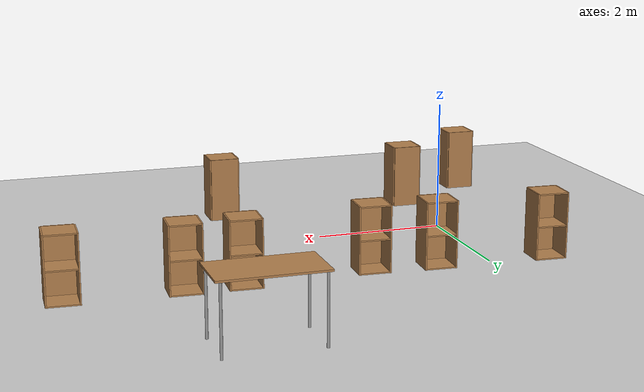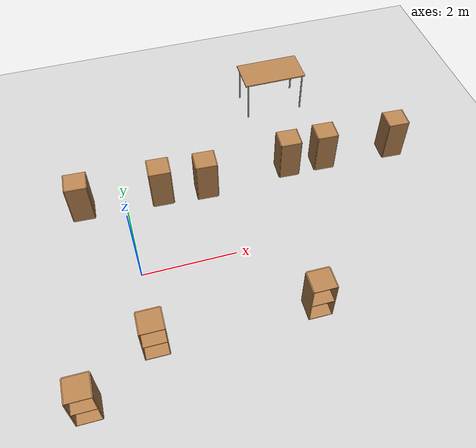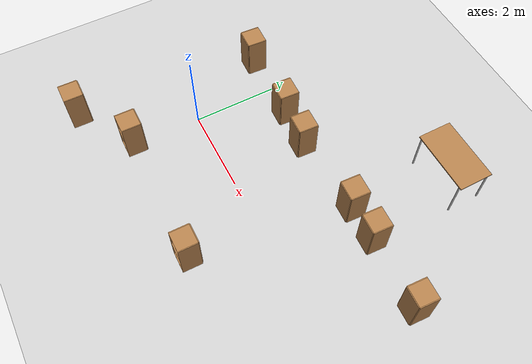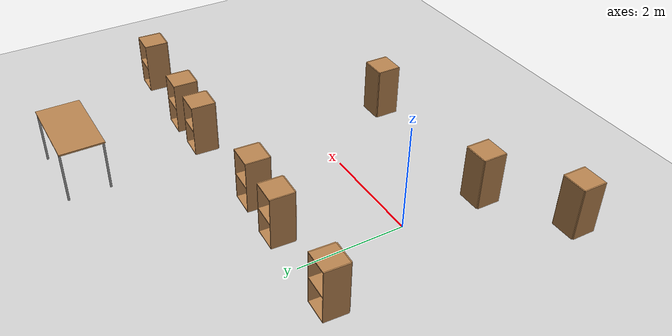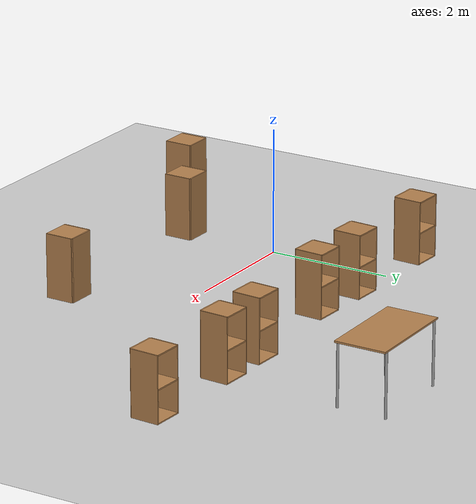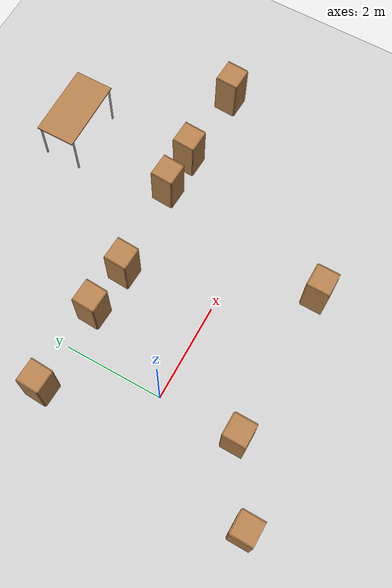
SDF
<sdf version="1.6">
 <world name="default">
  <model name="ground_plane">
   <static>1</static>
   <link name="link">
    <collision name="collision">
     <geometry><plane><normal>0 0 1</normal><size>100 100</size></plane></geometry>
     <surface><friction><ode><mu>100</mu><mu2>50</mu2></ode></friction></surface>
    </collision>
    <visual name="visual">
     <cast_shadows>0</cast_shadows>
     <geometry><plane><normal>0 0 1</normal><size>100 100</size></plane></geometry>
     <material>
      <script><uri>file://media/materials/scripts/gazebo.material</uri><name>Gazebo/Grey</name></script>
     </material>
    </visual>
   </link>
  </model>
  <model name="table_0">
   <static>1</static>
   <link name="link">
    <collision name="surface">
     <pose>0 0 1 0 -0 0</pose>
     <geometry><box><size>1.5 0.8 0.03</size></box></geometry>
     <surface><friction><ode><mu>0.6</mu><mu2>0.6</mu2></ode></friction></surface>
    </collision>
    <visual name="visual1">
     <pose>0 0 1 0 -0 0</pose>
     <geometry><box><size>1.5 0.8 0.03</size></box></geometry>
     <material>
      <script><uri>file://media/materials/scripts/gazebo.material</uri><name>Gazebo/Wood</name></script>
     </material>
    </visual>
    <collision name="front_left_leg">
     <pose>0.68 0.38 0.5 0 -0 0</pose>
     <geometry><cylinder><radius>0.02</radius><length>1</length></cylinder></geometry>
    </collision>
    <visual name="front_left_leg">
     <pose>0.68 0.38 0.5 0 -0 0</pose>
     <geometry><cylinder><radius>0.02</radius><length>1</length></cylinder></geometry>
     <material>
      <script><uri>file://media/materials/scripts/gazebo.material</uri><name>Gazebo/Grey</name></script>
     </material>
    </visual>
    <collision name="front_right_leg">
     <pose>0.68 -0.38 0.5 0 -0 0</pose>
     <geometry><cylinder><radius>0.02</radius><length>1</length></cylinder></geometry>
    </collision>
    <visual name="front_right_leg">
     <pose>0.68 -0.38 0.5 0 -0 0</pose>
     <geometry><cylinder><radius>0.02</radius><length>1</length></cylinder></geometry>
     <material>
      <script><uri>file://media/materials/scripts/gazebo.material</uri><name>Gazebo/Grey</name></script>
     </material>
    </visual>
    <collision name="back_right_leg">
     <pose>-0.68 -0.38 0.5 0 -0 0</pose>
     <geometry><cylinder><radius>0.02</radius><length>1</length></cylinder></geometry>
    </collision>
    <visual name="back_right_leg">
     <pose>-0.68 -0.38 0.5 0 -0 0</pose>
     <geometry><cylinder><radius>0.02</radius><length>1</length></cylinder></geometry>
     <material>
      <script><uri>file://media/materials/scripts/gazebo.material</uri><name>Gazebo/Grey</name></script>
     </material>
    </visual>
    <collision name="back_left_leg">
     <pose>-0.68 0.38 0.5 0 -0 0</pose>
     <geometry><cylinder><radius>0.02</radius><length>1</length></cylinder></geometry>
    </collision>
    <visual name="back_left_leg">
     <pose>-0.68 0.38 0.5 0 -0 0</pose>
     <geometry><cylinder><radius>0.02</radius><length>1</length></cylinder></geometry>
     <material>
      <script><uri>file://media/materials/scripts/gazebo.material</uri><name>Gazebo/Grey</name></script>
     </material>
    </visual>
   </link>
   <pose>4.09062 4.26562 0 0 -0 0</pose>
  </model>
  <model name="cabinet_clone_clone_1">
   <static>1</static>
   <link name="cabinet_bottom_plate">
    <inertial>
     <pose>0 0 -1 0 -0 0</pose>
     <inertia><ixx>2.05</ixx><ixy>0</ixy><ixz>0</ixz><iyy>2.05</iyy><iyz>0</iyz><izz>2.05</izz></inertia>
     <mass>25</mass>
    </inertial>
    <collision name="cabinet_bottom_plate_geom">
     <pose>0 0 0.01 0 -0 0</pose>
     <geometry><box><size>0.45 0.45 0.02</size></box></geometry>
    </collision>
    <visual name="cabinet_bottom_plate_geom_visual">
     <pose>0 0 0.01 0 -0 0</pose>
     <geometry><box><size>0.45 0.45 0.02</size></box></geometry>
     <material>
      <script><uri>file://media/materials/scripts/gazebo.material</uri><name>Gazebo/Wood</name></script>
     </material>
    </visual>
    <collision name="cabinet_bottom_plate_geom_cabinet_back_plate">
     <pose>0.235 0 0.51 0 -0 0</pose>
     <geometry><box><size>0.02 0.45 1.02</size></box></geometry>
    </collision>
    <visual name="cabinet_bottom_plate_geom_cabinet_back_plate_visual">
     <pose>0.235 0 0.51 0 -0 0</pose>
     <geometry><box><size>0.02 0.45 1.02</size></box></geometry>
     <material>
      <script><uri>file://media/materials/scripts/gazebo.material</uri><name>Gazebo/Wood</name></script>
     </material>
    </visual>
    <collision name="cabinet_bottom_plate_geom_cabinet_left_plate">
     <pose>0 0.235 0.51 0 -0 0</pose>
     <geometry><box><size>0.45 0.02 1.02</size></box></geometry>
    </collision>
    <visual name="cabinet_bottom_plate_geom_cabinet_left_plate_visual">
     <pose>0 0.235 0.51 0 -0 0</pose>
     <geometry><box><size>0.45 0.02 1.02</size></box></geometry>
     <material>
      <script><uri>file://media/materials/scripts/gazebo.material</uri><name>Gazebo/Wood</name></script>
     </material>
    </visual>
    <collision name="cabinet_bottom_plate_geom_cabinet_middle_plate">
     <pose>0 0 0.51 0 -0 0</pose>
     <geometry><box><size>0.45 0.45 0.02</size></box></geometry>
    </collision>
    <visual name="cabinet_bottom_plate_geom_cabinet_middle_plate_visual">
     <pose>0 0 0.51 0 -0 0</pose>
     <geometry><box><size>0.45 0.45 0.02</size></box></geometry>
     <material>
      <script><uri>file://media/materials/scripts/gazebo.material</uri><name>Gazebo/Wood</name></script>
     </material>
    </visual>
    <collision name="cabinet_bottom_plate_geom_cabinet_right_plate">
     <pose>0 -0.235 0.51 0 -0 0</pose>
     <geometry><box><size>0.45 0.02 1.02</size></box></geometry>
    </collision>
    <visual name="cabinet_bottom_plate_geom_cabinet_right_plate_visual">
     <pose>0 -0.235 0.51 0 -0 0</pose>
     <geometry><box><size>0.45 0.02 1.02</size></box></geometry>
     <material>
      <script><uri>file://media/materials/scripts/gazebo.material</uri><name>Gazebo/Wood</name></script>
     </material>
    </visual>
    <collision name="cabinet_bottom_plate_geom_cabinet_top_plate">
     <pose>0 0 1.01 0 -0 0</pose>
     <geometry><box><size>0.45 0.45 0.02</size></box></geometry>
    </collision>
    <visual name="cabinet_bottom_plate_geom_cabinet_top_plate_visual">
     <pose>0 0 1.01 0 -0 0</pose>
     <geometry><box><size>0.45 0.45 0.02</size></box></geometry>
     <material>
      <script><uri>file://media/materials/scripts/gazebo.material</uri><name>Gazebo/Wood</name></script>
     </material>
    </visual>
   </link>
   <pose>-1.38672 -2.48011 0 0 -0 1.55893</pose>
  </model>
  <model name="cabinet_clone_clone_2_clone">
   <static>1</static>
   <link name="cabinet_bottom_plate">
    <inertial>
     <pose>0 0 -1 0 -0 0</pose>
     <inertia><ixx>2.05</ixx><ixy>0</ixy><ixz>0</ixz><iyy>2.05</iyy><iyz>0</iyz><izz>2.05</izz></inertia>
     <mass>25</mass>
    </inertial>
    <collision name="cabinet_bottom_plate_geom">
     <pose>0 0 0.01 0 -0 0</pose>
     <geometry><box><size>0.45 0.45 0.02</size></box></geometry>
    </collision>
    <visual name="cabinet_bottom_plate_geom_visual">
     <pose>0 0 0.01 0 -0 0</pose>
     <geometry><box><size>0.45 0.45 0.02</size></box></geometry>
     <material>
      <script><uri>file://media/materials/scripts/gazebo.material</uri><name>Gazebo/Wood</name></script>
     </material>
    </visual>
    <collision name="cabinet_bottom_plate_geom_cabinet_back_plate">
     <pose>0.235 0 0.51 0 -0 0</pose>
     <geometry><box><size>0.02 0.45 1.02</size></box></geometry>
    </collision>
    <visual name="cabinet_bottom_plate_geom_cabinet_back_plate_visual">
     <pose>0.235 0 0.51 0 -0 0</pose>
     <geometry><box><size>0.02 0.45 1.02</size></box></geometry>
     <material>
      <script><uri>file://media/materials/scripts/gazebo.material</uri><name>Gazebo/Wood</name></script>
     </material>
    </visual>
    <collision name="cabinet_bottom_plate_geom_cabinet_left_plate">
     <pose>0 0.235 0.51 0 -0 0</pose>
     <geometry><box><size>0.45 0.02 1.02</size></box></geometry>
    </collision>
    <visual name="cabinet_bottom_plate_geom_cabinet_left_plate_visual">
     <pose>0 0.235 0.51 0 -0 0</pose>
     <geometry><box><size>0.45 0.02 1.02</size></box></geometry>
     <material>
      <script><uri>file://media/materials/scripts/gazebo.material</uri><name>Gazebo/Wood</name></script>
     </material>
    </visual>
    <collision name="cabinet_bottom_plate_geom_cabinet_middle_plate">
     <pose>0 0 0.51 0 -0 0</pose>
     <geometry><box><size>0.45 0.45 0.02</size></box></geometry>
    </collision>
    <visual name="cabinet_bottom_plate_geom_cabinet_middle_plate_visual">
     <pose>0 0 0.51 0 -0 0</pose>
     <geometry><box><size>0.45 0.45 0.02</size></box></geometry>
     <material>
      <script><uri>file://media/materials/scripts/gazebo.material</uri><name>Gazebo/Wood</name></script>
     </material>
    </visual>
    <collision name="cabinet_bottom_plate_geom_cabinet_right_plate">
     <pose>0 -0.235 0.51 0 -0 0</pose>
     <geometry><box><size>0.45 0.02 1.02</size></box></geometry>
    </collision>
    <visual name="cabinet_bottom_plate_geom_cabinet_right_plate_visual">
     <pose>0 -0.235 0.51 0 -0 0</pose>
     <geometry><box><size>0.45 0.02 1.02</size></box></geometry>
     <material>
      <script><uri>file://media/materials/scripts/gazebo.material</uri><name>Gazebo/Wood</name></script>
     </material>
    </visual>
    <collision name="cabinet_bottom_plate_geom_cabinet_top_plate">
     <pose>0 0 1.01 0 -0 0</pose>
     <geometry><box><size>0.45 0.45 0.02</size></box></geometry>
    </collision>
    <visual name="cabinet_bottom_plate_geom_cabinet_top_plate_visual">
     <pose>0 0 1.01 0 -0 0</pose>
     <geometry><box><size>0.45 0.45 0.02</size></box></geometry>
     <material>
      <script><uri>file://media/materials/scripts/gazebo.material</uri><name>Gazebo/Wood</name></script>
     </material>
    </visual>
   </link>
   <pose>-0.929233 1.98604 0 0 0 -1.62204</pose>
  </model>
  <model name="cabinet_clone_clone_2_clone_0">
   <static>1</static>
   <link name="cabinet_bottom_plate">
    <inertial>
     <pose>0 0 -1 0 -0 0</pose>
     <inertia><ixx>2.05</ixx><ixy>0</ixy><ixz>0</ixz><iyy>2.05</iyy><iyz>0</iyz><izz>2.05</izz></inertia>
     <mass>25</mass>
    </inertial>
    <collision name="cabinet_bottom_plate_geom">
     <pose>0 0 0.01 0 -0 0</pose>
     <geometry><box><size>0.45 0.45 0.02</size></box></geometry>
    </collision>
    <visual name="cabinet_bottom_plate_geom_visual">
     <pose>0 0 0.01 0 -0 0</pose>
     <geometry><box><size>0.45 0.45 0.02</size></box></geometry>
     <material>
      <script><uri>file://media/materials/scripts/gazebo.material</uri><name>Gazebo/Wood</name></script>
     </material>
    </visual>
    <collision name="cabinet_bottom_plate_geom_cabinet_back_plate">
     <pose>0.235 0 0.51 0 -0 0</pose>
     <geometry><box><size>0.02 0.45 1.02</size></box></geometry>
    </collision>
    <visual name="cabinet_bottom_plate_geom_cabinet_back_plate_visual">
     <pose>0.235 0 0.51 0 -0 0</pose>
     <geometry><box><size>0.02 0.45 1.02</size></box></geometry>
     <material>
      <script><uri>file://media/materials/scripts/gazebo.material</uri><name>Gazebo/Wood</name></script>
     </material>
    </visual>
    <collision name="cabinet_bottom_plate_geom_cabinet_left_plate">
     <pose>0 0.235 0.51 0 -0 0</pose>
     <geometry><box><size>0.45 0.02 1.02</size></box></geometry>
    </collision>
    <visual name="cabinet_bottom_plate_geom_cabinet_left_plate_visual">
     <pose>0 0.235 0.51 0 -0 0</pose>
     <geometry><box><size>0.45 0.02 1.02</size></box></geometry>
     <material>
      <script><uri>file://media/materials/scripts/gazebo.material</uri><name>Gazebo/Wood</name></script>
     </material>
    </visual>
    <collision name="cabinet_bottom_plate_geom_cabinet_middle_plate">
     <pose>0 0 0.51 0 -0 0</pose>
     <geometry><box><size>0.45 0.45 0.02</size></box></geometry>
    </collision>
    <visual name="cabinet_bottom_plate_geom_cabinet_middle_plate_visual">
     <pose>0 0 0.51 0 -0 0</pose>
     <geometry><box><size>0.45 0.45 0.02</size></box></geometry>
     <material>
      <script><uri>file://media/materials/scripts/gazebo.material</uri><name>Gazebo/Wood</name></script>
     </material>
    </visual>
    <collision name="cabinet_bottom_plate_geom_cabinet_right_plate">
     <pose>0 -0.235 0.51 0 -0 0</pose>
     <geometry><box><size>0.45 0.02 1.02</size></box></geometry>
    </collision>
    <visual name="cabinet_bottom_plate_geom_cabinet_right_plate_visual">
     <pose>0 -0.235 0.51 0 -0 0</pose>
     <geometry><box><size>0.45 0.02 1.02</size></box></geometry>
     <material>
      <script><uri>file://media/materials/scripts/gazebo.material</uri><name>Gazebo/Wood</name></script>
     </material>
    </visual>
    <collision name="cabinet_bottom_plate_geom_cabinet_top_plate">
     <pose>0 0 1.01 0 -0 0</pose>
     <geometry><box><size>0.45 0.45 0.02</size></box></geometry>
    </collision>
    <visual name="cabinet_bottom_plate_geom_cabinet_top_plate_visual">
     <pose>0 0 1.01 0 -0 0</pose>
     <geometry><box><size>0.45 0.45 0.02</size></box></geometry>
     <material>
      <script><uri>file://media/materials/scripts/gazebo.material</uri><name>Gazebo/Wood</name></script>
     </material>
    </visual>
   </link>
   <pose>0.822894 1.92328 0 0 0 -1.62204</pose>
  </model>
  <model name="cabinet_clone_clone_2_clone_1">
   <static>1</static>
   <link name="cabinet_bottom_plate">
    <inertial>
     <pose>0 0 -1 0 -0 0</pose>
     <inertia><ixx>2.05</ixx><ixy>0</ixy><ixz>0</ixz><iyy>2.05</iyy><iyz>0</iyz><izz>2.05</izz></inertia>
     <mass>25</mass>
    </inertial>
    <collision name="cabinet_bottom_plate_geom">
     <pose>0 0 0.01 0 -0 0</pose>
     <geometry><box><size>0.45 0.45 0.02</size></box></geometry>
    </collision>
    <visual name="cabinet_bottom_plate_geom_visual">
     <pose>0 0 0.01 0 -0 0</pose>
     <geometry><box><size>0.45 0.45 0.02</size></box></geometry>
     <material>
      <script><uri>file://media/materials/scripts/gazebo.material</uri><name>Gazebo/Wood</name></script>
     </material>
    </visual>
    <collision name="cabinet_bottom_plate_geom_cabinet_back_plate">
     <pose>0.235 0 0.51 0 -0 0</pose>
     <geometry><box><size>0.02 0.45 1.02</size></box></geometry>
    </collision>
    <visual name="cabinet_bottom_plate_geom_cabinet_back_plate_visual">
     <pose>0.235 0 0.51 0 -0 0</pose>
     <geometry><box><size>0.02 0.45 1.02</size></box></geometry>
     <material>
      <script><uri>file://media/materials/scripts/gazebo.material</uri><name>Gazebo/Wood</name></script>
     </material>
    </visual>
    <collision name="cabinet_bottom_plate_geom_cabinet_left_plate">
     <pose>0 0.235 0.51 0 -0 0</pose>
     <geometry><box><size>0.45 0.02 1.02</size></box></geometry>
    </collision>
    <visual name="cabinet_bottom_plate_geom_cabinet_left_plate_visual">
     <pose>0 0.235 0.51 0 -0 0</pose>
     <geometry><box><size>0.45 0.02 1.02</size></box></geometry>
     <material>
      <script><uri>file://media/materials/scripts/gazebo.material</uri><name>Gazebo/Wood</name></script>
     </material>
    </visual>
    <collision name="cabinet_bottom_plate_geom_cabinet_middle_plate">
     <pose>0 0 0.51 0 -0 0</pose>
     <geometry><box><size>0.45 0.45 0.02</size></box></geometry>
    </collision>
    <visual name="cabinet_bottom_plate_geom_cabinet_middle_plate_visual">
     <pose>0 0 0.51 0 -0 0</pose>
     <geometry><box><size>0.45 0.45 0.02</size></box></geometry>
     <material>
      <script><uri>file://media/materials/scripts/gazebo.material</uri><name>Gazebo/Wood</name></script>
     </material>
    </visual>
    <collision name="cabinet_bottom_plate_geom_cabinet_right_plate">
     <pose>0 -0.235 0.51 0 -0 0</pose>
     <geometry><box><size>0.45 0.02 1.02</size></box></geometry>
    </collision>
    <visual name="cabinet_bottom_plate_geom_cabinet_right_plate_visual">
     <pose>0 -0.235 0.51 0 -0 0</pose>
     <geometry><box><size>0.45 0.02 1.02</size></box></geometry>
     <material>
      <script><uri>file://media/materials/scripts/gazebo.material</uri><name>Gazebo/Wood</name></script>
     </material>
    </visual>
    <collision name="cabinet_bottom_plate_geom_cabinet_top_plate">
     <pose>0 0 1.01 0 -0 0</pose>
     <geometry><box><size>0.45 0.45 0.02</size></box></geometry>
    </collision>
    <visual name="cabinet_bottom_plate_geom_cabinet_top_plate_visual">
     <pose>0 0 1.01 0 -0 0</pose>
     <geometry><box><size>0.45 0.45 0.02</size></box></geometry>
     <material>
      <script><uri>file://media/materials/scripts/gazebo.material</uri><name>Gazebo/Wood</name></script>
     </material>
    </visual>
   </link>
   <pose>1.82435 1.84804 0 0 0 -1.62204</pose>
  </model>
  <model name="cabinet_clone_clone_2_clone_2">
   <static>1</static>
   <link name="cabinet_bottom_plate">
    <inertial>
     <pose>0 0 -1 0 -0 0</pose>
     <inertia><ixx>2.05</ixx><ixy>0</ixy><ixz>0</ixz><iyy>2.05</iyy><iyz>0</iyz><izz>2.05</izz></inertia>
     <mass>25</mass>
    </inertial>
    <collision name="cabinet_bottom_plate_geom">
     <pose>0 0 0.01 0 -0 0</pose>
     <geometry><box><size>0.45 0.45 0.02</size></box></geometry>
    </collision>
    <visual name="cabinet_bottom_plate_geom_visual">
     <pose>0 0 0.01 0 -0 0</pose>
     <geometry><box><size>0.45 0.45 0.02</size></box></geometry>
     <material>
      <script><uri>file://media/materials/scripts/gazebo.material</uri><name>Gazebo/Wood</name></script>
     </material>
    </visual>
    <collision name="cabinet_bottom_plate_geom_cabinet_back_plate">
     <pose>0.235 0 0.51 0 -0 0</pose>
     <geometry><box><size>0.02 0.45 1.02</size></box></geometry>
    </collision>
    <visual name="cabinet_bottom_plate_geom_cabinet_back_plate_visual">
     <pose>0.235 0 0.51 0 -0 0</pose>
     <geometry><box><size>0.02 0.45 1.02</size></box></geometry>
     <material>
      <script><uri>file://media/materials/scripts/gazebo.material</uri><name>Gazebo/Wood</name></script>
     </material>
    </visual>
    <collision name="cabinet_bottom_plate_geom_cabinet_left_plate">
     <pose>0 0.235 0.51 0 -0 0</pose>
     <geometry><box><size>0.45 0.02 1.02</size></box></geometry>
    </collision>
    <visual name="cabinet_bottom_plate_geom_cabinet_left_plate_visual">
     <pose>0 0.235 0.51 0 -0 0</pose>
     <geometry><box><size>0.45 0.02 1.02</size></box></geometry>
     <material>
      <script><uri>file://media/materials/scripts/gazebo.material</uri><name>Gazebo/Wood</name></script>
     </material>
    </visual>
    <collision name="cabinet_bottom_plate_geom_cabinet_middle_plate">
     <pose>0 0 0.51 0 -0 0</pose>
     <geometry><box><size>0.45 0.45 0.02</size></box></geometry>
    </collision>
    <visual name="cabinet_bottom_plate_geom_cabinet_middle_plate_visual">
     <pose>0 0 0.51 0 -0 0</pose>
     <geometry><box><size>0.45 0.45 0.02</size></box></geometry>
     <material>
      <script><uri>file://media/materials/scripts/gazebo.material</uri><name>Gazebo/Wood</name></script>
     </material>
    </visual>
    <collision name="cabinet_bottom_plate_geom_cabinet_right_plate">
     <pose>0 -0.235 0.51 0 -0 0</pose>
     <geometry><box><size>0.45 0.02 1.02</size></box></geometry>
    </collision>
    <visual name="cabinet_bottom_plate_geom_cabinet_right_plate_visual">
     <pose>0 -0.235 0.51 0 -0 0</pose>
     <geometry><box><size>0.45 0.02 1.02</size></box></geometry>
     <material>
      <script><uri>file://media/materials/scripts/gazebo.material</uri><name>Gazebo/Wood</name></script>
     </material>
    </visual>
    <collision name="cabinet_bottom_plate_geom_cabinet_top_plate">
     <pose>0 0 1.01 0 -0 0</pose>
     <geometry><box><size>0.45 0.45 0.02</size></box></geometry>
    </collision>
    <visual name="cabinet_bottom_plate_geom_cabinet_top_plate_visual">
     <pose>0 0 1.01 0 -0 0</pose>
     <geometry><box><size>0.45 0.45 0.02</size></box></geometry>
     <material>
      <script><uri>file://media/materials/scripts/gazebo.material</uri><name>Gazebo/Wood</name></script>
     </material>
    </visual>
   </link>
   <pose>3.77479 1.96724 0 0 0 -1.62204</pose>
  </model>
  <model name="cabinet_clone_clone_2_clone_3">
   <static>1</static>
   <link name="cabinet_bottom_plate">
    <inertial>
     <pose>0 0 -1 0 -0 0</pose>
     <inertia><ixx>2.05</ixx><ixy>0</ixy><ixz>0</ixz><iyy>2.05</iyy><iyz>0</iyz><izz>2.05</izz></inertia>
     <mass>25</mass>
    </inertial>
    <collision name="cabinet_bottom_plate_geom">
     <pose>0 0 0.01 0 -0 0</pose>
     <geometry><box><size>0.45 0.45 0.02</size></box></geometry>
    </collision>
    <visual name="cabinet_bottom_plate_geom_visual">
     <pose>0 0 0.01 0 -0 0</pose>
     <geometry><box><size>0.45 0.45 0.02</size></box></geometry>
     <material>
      <script><uri>file://media/materials/scripts/gazebo.material</uri><name>Gazebo/Wood</name></script>
     </material>
    </visual>
    <collision name="cabinet_bottom_plate_geom_cabinet_back_plate">
     <pose>0.235 0 0.51 0 -0 0</pose>
     <geometry><box><size>0.02 0.45 1.02</size></box></geometry>
    </collision>
    <visual name="cabinet_bottom_plate_geom_cabinet_back_plate_visual">
     <pose>0.235 0 0.51 0 -0 0</pose>
     <geometry><box><size>0.02 0.45 1.02</size></box></geometry>
     <material>
      <script><uri>file://media/materials/scripts/gazebo.material</uri><name>Gazebo/Wood</name></script>
     </material>
    </visual>
    <collision name="cabinet_bottom_plate_geom_cabinet_left_plate">
     <pose>0 0.235 0.51 0 -0 0</pose>
     <geometry><box><size>0.45 0.02 1.02</size></box></geometry>
    </collision>
    <visual name="cabinet_bottom_plate_geom_cabinet_left_plate_visual">
     <pose>0 0.235 0.51 0 -0 0</pose>
     <geometry><box><size>0.45 0.02 1.02</size></box></geometry>
     <material>
      <script><uri>file://media/materials/scripts/gazebo.material</uri><name>Gazebo/Wood</name></script>
     </material>
    </visual>
    <collision name="cabinet_bottom_plate_geom_cabinet_middle_plate">
     <pose>0 0 0.51 0 -0 0</pose>
     <geometry><box><size>0.45 0.45 0.02</size></box></geometry>
    </collision>
    <visual name="cabinet_bottom_plate_geom_cabinet_middle_plate_visual">
     <pose>0 0 0.51 0 -0 0</pose>
     <geometry><box><size>0.45 0.45 0.02</size></box></geometry>
     <material>
      <script><uri>file://media/materials/scripts/gazebo.material</uri><name>Gazebo/Wood</name></script>
     </material>
    </visual>
    <collision name="cabinet_bottom_plate_geom_cabinet_right_plate">
     <pose>0 -0.235 0.51 0 -0 0</pose>
     <geometry><box><size>0.45 0.02 1.02</size></box></geometry>
    </collision>
    <visual name="cabinet_bottom_plate_geom_cabinet_right_plate_visual">
     <pose>0 -0.235 0.51 0 -0 0</pose>
     <geometry><box><size>0.45 0.02 1.02</size></box></geometry>
     <material>
      <script><uri>file://media/materials/scripts/gazebo.material</uri><name>Gazebo/Wood</name></script>
     </material>
    </visual>
    <collision name="cabinet_bottom_plate_geom_cabinet_top_plate">
     <pose>0 0 1.01 0 -0 0</pose>
     <geometry><box><size>0.45 0.45 0.02</size></box></geometry>
    </collision>
    <visual name="cabinet_bottom_plate_geom_cabinet_top_plate_visual">
     <pose>0 0 1.01 0 -0 0</pose>
     <geometry><box><size>0.45 0.45 0.02</size></box></geometry>
     <material>
      <script><uri>file://media/materials/scripts/gazebo.material</uri><name>Gazebo/Wood</name></script>
     </material>
    </visual>
   </link>
   <pose>4.62837 1.95934 0 0 0 -1.62204</pose>
  </model>
  <model name="cabinet_clone_clone_2_clone_4">
   <static>1</static>
   <link name="cabinet_bottom_plate">
    <inertial>
     <pose>0 0 -1 0 -0 0</pose>
     <inertia><ixx>2.05</ixx><ixy>0</ixy><ixz>0</ixz><iyy>2.05</iyy><iyz>0</iyz><izz>2.05</izz></inertia>
     <mass>25</mass>
    </inertial>
    <collision name="cabinet_bottom_plate_geom">
     <pose>0 0 0.01 0 -0 0</pose>
     <geometry><box><size>0.45 0.45 0.02</size></box></geometry>
    </collision>
    <visual name="cabinet_bottom_plate_geom_visual">
     <pose>0 0 0.01 0 -0 0</pose>
     <geometry><box><size>0.45 0.45 0.02</size></box></geometry>
     <material>
      <script><uri>file://media/materials/scripts/gazebo.material</uri><name>Gazebo/Wood</name></script>
     </material>
    </visual>
    <collision name="cabinet_bottom_plate_geom_cabinet_back_plate">
     <pose>0.235 0 0.51 0 -0 0</pose>
     <geometry><box><size>0.02 0.45 1.02</size></box></geometry>
    </collision>
    <visual name="cabinet_bottom_plate_geom_cabinet_back_plate_visual">
     <pose>0.235 0 0.51 0 -0 0</pose>
     <geometry><box><size>0.02 0.45 1.02</size></box></geometry>
     <material>
      <script><uri>file://media/materials/scripts/gazebo.material</uri><name>Gazebo/Wood</name></script>
     </material>
    </visual>
    <collision name="cabinet_bottom_plate_geom_cabinet_left_plate">
     <pose>0 0.235 0.51 0 -0 0</pose>
     <geometry><box><size>0.45 0.02 1.02</size></box></geometry>
    </collision>
    <visual name="cabinet_bottom_plate_geom_cabinet_left_plate_visual">
     <pose>0 0.235 0.51 0 -0 0</pose>
     <geometry><box><size>0.45 0.02 1.02</size></box></geometry>
     <material>
      <script><uri>file://media/materials/scripts/gazebo.material</uri><name>Gazebo/Wood</name></script>
     </material>
    </visual>
    <collision name="cabinet_bottom_plate_geom_cabinet_middle_plate">
     <pose>0 0 0.51 0 -0 0</pose>
     <geometry><box><size>0.45 0.45 0.02</size></box></geometry>
    </collision>
    <visual name="cabinet_bottom_plate_geom_cabinet_middle_plate_visual">
     <pose>0 0 0.51 0 -0 0</pose>
     <geometry><box><size>0.45 0.45 0.02</size></box></geometry>
     <material>
      <script><uri>file://media/materials/scripts/gazebo.material</uri><name>Gazebo/Wood</name></script>
     </material>
    </visual>
    <collision name="cabinet_bottom_plate_geom_cabinet_right_plate">
     <pose>0 -0.235 0.51 0 -0 0</pose>
     <geometry><box><size>0.45 0.02 1.02</size></box></geometry>
    </collision>
    <visual name="cabinet_bottom_plate_geom_cabinet_right_plate_visual">
     <pose>0 -0.235 0.51 0 -0 0</pose>
     <geometry><box><size>0.45 0.02 1.02</size></box></geometry>
     <material>
      <script><uri>file://media/materials/scripts/gazebo.material</uri><name>Gazebo/Wood</name></script>
     </material>
    </visual>
    <collision name="cabinet_bottom_plate_geom_cabinet_top_plate">
     <pose>0 0 1.01 0 -0 0</pose>
     <geometry><box><size>0.45 0.45 0.02</size></box></geometry>
    </collision>
    <visual name="cabinet_bottom_plate_geom_cabinet_top_plate_visual">
     <pose>0 0 1.01 0 -0 0</pose>
     <geometry><box><size>0.45 0.45 0.02</size></box></geometry>
     <material>
      <script><uri>file://media/materials/scripts/gazebo.material</uri><name>Gazebo/Wood</name></script>
     </material>
    </visual>
   </link>
   <pose>6.3125 1.89373 0 0 0 -1.62204</pose>
  </model>
  <model name="cabinet_clone_clone_1_clone">
   <static>1</static>
   <link name="cabinet_bottom_plate">
    <inertial>
     <pose>0 0 -1 0 -0 0</pose>
     <inertia><ixx>2.05</ixx><ixy>0</ixy><ixz>0</ixz><iyy>2.05</iyy><iyz>0</iyz><izz>2.05</izz></inertia>
     <mass>25</mass>
    </inertial>
    <collision name="cabinet_bottom_plate_geom">
     <pose>0 0 0.01 0 -0 0</pose>
     <geometry><box><size>0.45 0.45 0.02</size></box></geometry>
    </collision>
    <visual name="cabinet_bottom_plate_geom_visual">
     <pose>0 0 0.01 0 -0 0</pose>
     <geometry><box><size>0.45 0.45 0.02</size></box></geometry>
     <material>
      <script><uri>file://media/materials/scripts/gazebo.material</uri><name>Gazebo/Wood</name></script>
     </material>
    </visual>
    <collision name="cabinet_bottom_plate_geom_cabinet_back_plate">
     <pose>0.235 0 0.51 0 -0 0</pose>
     <geometry><box><size>0.02 0.45 1.02</size></box></geometry>
    </collision>
    <visual name="cabinet_bottom_plate_geom_cabinet_back_plate_visual">
     <pose>0.235 0 0.51 0 -0 0</pose>
     <geometry><box><size>0.02 0.45 1.02</size></box></geometry>
     <material>
      <script><uri>file://media/materials/scripts/gazebo.material</uri><name>Gazebo/Wood</name></script>
     </material>
    </visual>
    <collision name="cabinet_bottom_plate_geom_cabinet_left_plate">
     <pose>0 0.235 0.51 0 -0 0</pose>
     <geometry><box><size>0.45 0.02 1.02</size></box></geometry>
    </collision>
    <visual name="cabinet_bottom_plate_geom_cabinet_left_plate_visual">
     <pose>0 0.235 0.51 0 -0 0</pose>
     <geometry><box><size>0.45 0.02 1.02</size></box></geometry>
     <material>
      <script><uri>file://media/materials/scripts/gazebo.material</uri><name>Gazebo/Wood</name></script>
     </material>
    </visual>
    <collision name="cabinet_bottom_plate_geom_cabinet_middle_plate">
     <pose>0 0 0.51 0 -0 0</pose>
     <geometry><box><size>0.45 0.45 0.02</size></box></geometry>
    </collision>
    <visual name="cabinet_bottom_plate_geom_cabinet_middle_plate_visual">
     <pose>0 0 0.51 0 -0 0</pose>
     <geometry><box><size>0.45 0.45 0.02</size></box></geometry>
     <material>
      <script><uri>file://media/materials/scripts/gazebo.material</uri><name>Gazebo/Wood</name></script>
     </material>
    </visual>
    <collision name="cabinet_bottom_plate_geom_cabinet_right_plate">
     <pose>0 -0.235 0.51 0 -0 0</pose>
     <geometry><box><size>0.45 0.02 1.02</size></box></geometry>
    </collision>
    <visual name="cabinet_bottom_plate_geom_cabinet_right_plate_visual">
     <pose>0 -0.235 0.51 0 -0 0</pose>
     <geometry><box><size>0.45 0.02 1.02</size></box></geometry>
     <material>
      <script><uri>file://media/materials/scripts/gazebo.material</uri><name>Gazebo/Wood</name></script>
     </material>
    </visual>
    <collision name="cabinet_bottom_plate_geom_cabinet_top_plate">
     <pose>0 0 1.01 0 -0 0</pose>
     <geometry><box><size>0.45 0.45 0.02</size></box></geometry>
    </collision>
    <visual name="cabinet_bottom_plate_geom_cabinet_top_plate_visual">
     <pose>0 0 1.01 0 -0 0</pose>
     <geometry><box><size>0.45 0.45 0.02</size></box></geometry>
     <material>
      <script><uri>file://media/materials/scripts/gazebo.material</uri><name>Gazebo/Wood</name></script>
     </material>
    </visual>
   </link>
   <pose>-0.016575 -1.61649 0 0 -0 1.55893</pose>
  </model>
  <model name="cabinet_clone_clone_1_clone_0">
   <static>1</static>
   <link name="cabinet_bottom_plate">
    <inertial>
     <pose>0 0 -1 0 -0 0</pose>
     <inertia><ixx>2.05</ixx><ixy>0</ixy><ixz>0</ixz><iyy>2.05</iyy><iyz>0</iyz><izz>2.05</izz></inertia>
     <mass>25</mass>
    </inertial>
    <collision name="cabinet_bottom_plate_geom">
     <pose>0 0 0.01 0 -0 0</pose>
     <geometry><box><size>0.45 0.45 0.02</size></box></geometry>
    </collision>
    <visual name="cabinet_bottom_plate_geom_visual">
     <pose>0 0 0.01 0 -0 0</pose>
     <geometry><box><size>0.45 0.45 0.02</size></box></geometry>
     <material>
      <script><uri>file://media/materials/scripts/gazebo.material</uri><name>Gazebo/Wood</name></script>
     </material>
    </visual>
    <collision name="cabinet_bottom_plate_geom_cabinet_back_plate">
     <pose>0.235 0 0.51 0 -0 0</pose>
     <geometry><box><size>0.02 0.45 1.02</size></box></geometry>
    </collision>
    <visual name="cabinet_bottom_plate_geom_cabinet_back_plate_visual">
     <pose>0.235 0 0.51 0 -0 0</pose>
     <geometry><box><size>0.02 0.45 1.02</size></box></geometry>
     <material>
      <script><uri>file://media/materials/scripts/gazebo.material</uri><name>Gazebo/Wood</name></script>
     </material>
    </visual>
    <collision name="cabinet_bottom_plate_geom_cabinet_left_plate">
     <pose>0 0.235 0.51 0 -0 0</pose>
     <geometry><box><size>0.45 0.02 1.02</size></box></geometry>
    </collision>
    <visual name="cabinet_bottom_plate_geom_cabinet_left_plate_visual">
     <pose>0 0.235 0.51 0 -0 0</pose>
     <geometry><box><size>0.45 0.02 1.02</size></box></geometry>
     <material>
      <script><uri>file://media/materials/scripts/gazebo.material</uri><name>Gazebo/Wood</name></script>
     </material>
    </visual>
    <collision name="cabinet_bottom_plate_geom_cabinet_middle_plate">
     <pose>0 0 0.51 0 -0 0</pose>
     <geometry><box><size>0.45 0.45 0.02</size></box></geometry>
    </collision>
    <visual name="cabinet_bottom_plate_geom_cabinet_middle_plate_visual">
     <pose>0 0 0.51 0 -0 0</pose>
     <geometry><box><size>0.45 0.45 0.02</size></box></geometry>
     <material>
      <script><uri>file://media/materials/scripts/gazebo.material</uri><name>Gazebo/Wood</name></script>
     </material>
    </visual>
    <collision name="cabinet_bottom_plate_geom_cabinet_right_plate">
     <pose>0 -0.235 0.51 0 -0 0</pose>
     <geometry><box><size>0.45 0.02 1.02</size></box></geometry>
    </collision>
    <visual name="cabinet_bottom_plate_geom_cabinet_right_plate_visual">
     <pose>0 -0.235 0.51 0 -0 0</pose>
     <geometry><box><size>0.45 0.02 1.02</size></box></geometry>
     <material>
      <script><uri>file://media/materials/scripts/gazebo.material</uri><name>Gazebo/Wood</name></script>
     </material>
    </visual>
    <collision name="cabinet_bottom_plate_geom_cabinet_top_plate">
     <pose>0 0 1.01 0 -0 0</pose>
     <geometry><box><size>0.45 0.45 0.02</size></box></geometry>
    </collision>
    <visual name="cabinet_bottom_plate_geom_cabinet_top_plate_visual">
     <pose>0 0 1.01 0 -0 0</pose>
     <geometry><box><size>0.45 0.45 0.02</size></box></geometry>
     <material>
      <script><uri>file://media/materials/scripts/gazebo.material</uri><name>Gazebo/Wood</name></script>
     </material>
    </visual>
   </link>
   <pose>3.17585 -1.66862 0 0 -0 1.55893</pose>
  </model>
 </world>
</sdf>
